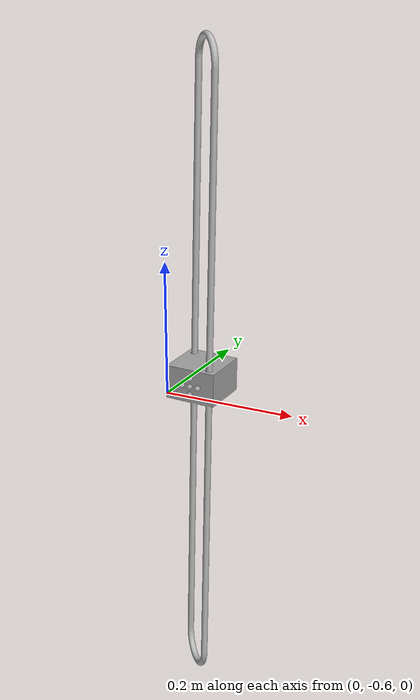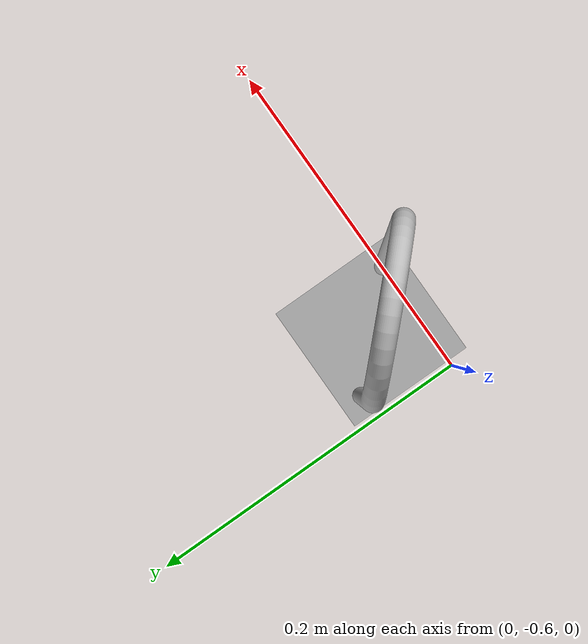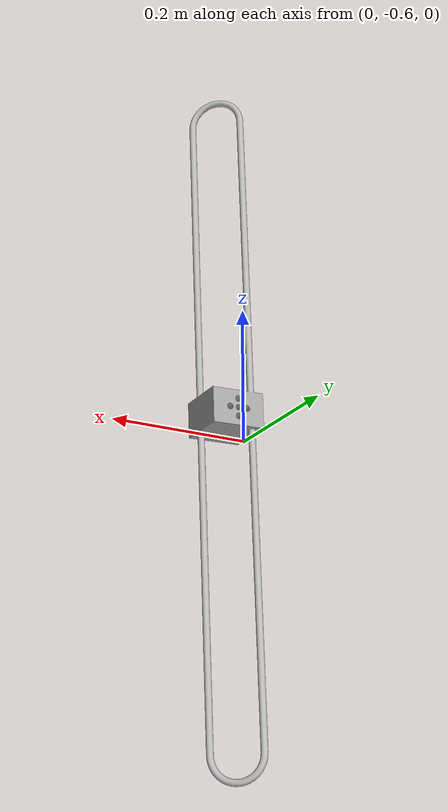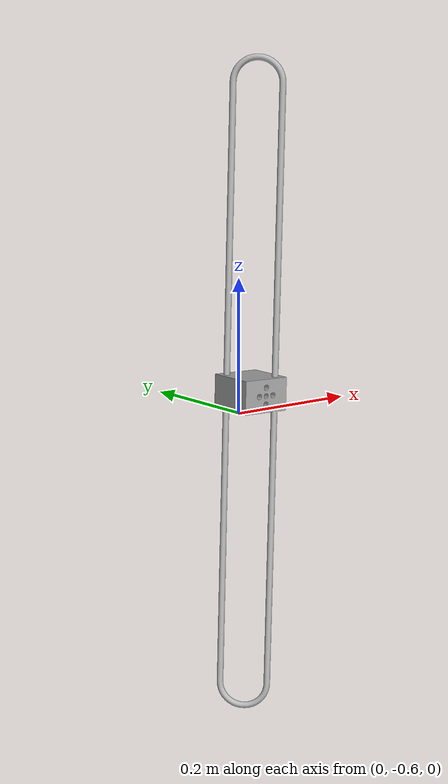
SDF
<?xml version='1.0'?>
<sdf version="1.6">
    <model name="commsmod">
        <static>false</static> <!--set this to false for sim-->
        <link name="body">
            <collision name = 'collision'>
                <geometry>
                    <mesh>
                        <uri>model://commsmod/commsmod.dae</uri>
                    </mesh>
                </geometry>
            </collision>
            <visual name="visual">
                <geometry>
                    <mesh>
                        <uri>model://commsmod/commsmod.dae</uri>
                    </mesh>
                </geometry>
                <material>
                    <script>
                        <uri>model://commsmod/materials/scripts</uri>
                        <uri>model://commsmod/materials/textures</uri>
                        <name>raccoon/Diffuse</name>
                    </script>
                </material>
            </visual>
            <inertial>
                <mass>2</mass>
            </inertial>
        </link>
    </model>
</sdf>
